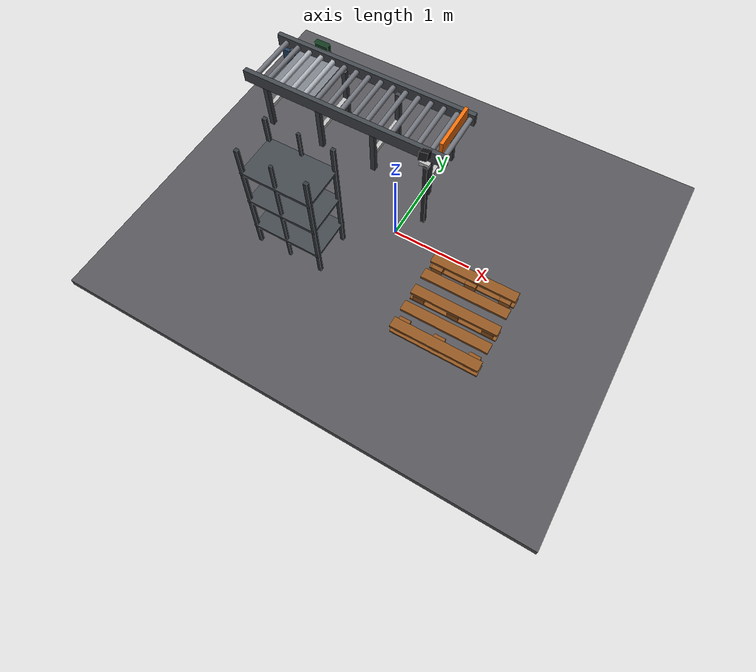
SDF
<sdf version="1.8">
 <world name="ahead_workcell_v3_2_fence">
  <model name="floor">
   <static>true</static>
   <link name="floor_link">
    <collision name="collision">
     <pose>0 0 -0.05 0 0 0</pose>
     <geometry><box><size>6 5 0.10</size></box></geometry>
    </collision>
    <visual name="visual">
     <pose>0 0 -0.05 0 0 0</pose>
     <geometry><box><size>6 5 0.10</size></box></geometry>
     <material><ambient>0.22 0.22 0.23 1</ambient><diffuse>0.32 0.32 0.34 1</diffuse></material>
    </visual>
   </link>
  </model>
  <model name="conveyor_main">
   <static>true</static>
   <link name="conveyor_link">
    <collision name="collision">
     <pose>-1.15 1.05 0.75 0 0 0</pose>
     <geometry><box><size>2.80 0.80 0.20</size></box></geometry>
     <surface><friction><ode><mu>0.7</mu><mu2>150</mu2><fdir1>0 1 0</fdir1></ode></friction></surface>
    </collision>
    <visual name="left_rail">
     <pose>-1.15 0.67 0.84 0 0 0</pose>
     <geometry><box><size>2.90 0.065 0.18</size></box></geometry>
     <material><ambient>0.11 0.12 0.13 1</ambient><diffuse>0.25 0.27 0.29 1</diffuse></material>
    </visual>
    <visual name="right_rail">
     <pose>-1.15 1.43 0.84 0 0 0</pose>
     <geometry><box><size>2.90 0.065 0.18</size></box></geometry>
     <material><ambient>0.11 0.12 0.13 1</ambient><diffuse>0.25 0.27 0.29 1</diffuse></material>
    </visual>
    <visual name="roller_00">
     <pose>-2.450 1.05 0.86 1.57079632679 0 0</pose>
     <geometry><cylinder><radius>0.035</radius><length>0.68</length></cylinder></geometry>
     <material><ambient>0.27 0.28 0.30 1</ambient><diffuse>0.44 0.45 0.48 1</diffuse></material>
    </visual>
    <visual name="roller_01">
     <pose>-2.270 1.05 0.86 1.57079632679 0 0</pose>
     <geometry><cylinder><radius>0.035</radius><length>0.68</length></cylinder></geometry>
     <material><ambient>0.27 0.28 0.30 1</ambient><diffuse>0.44 0.45 0.48 1</diffuse></material>
    </visual>
    <visual name="roller_02">
     <pose>-2.090 1.05 0.86 1.57079632679 0 0</pose>
     <geometry><cylinder><radius>0.035</radius><length>0.68</length></cylinder></geometry>
     <material><ambient>0.43 0.45 0.47 1</ambient><diffuse>0.66 0.68 0.71 1</diffuse></material>
    </visual>
    <visual name="roller_03">
     <pose>-1.910 1.05 0.86 1.57079632679 0 0</pose>
     <geometry><cylinder><radius>0.035</radius><length>0.68</length></cylinder></geometry>
     <material><ambient>0.43 0.45 0.47 1</ambient><diffuse>0.66 0.68 0.71 1</diffuse></material>
    </visual>
    <visual name="roller_04">
     <pose>-1.730 1.05 0.86 1.57079632679 0 0</pose>
     <geometry><cylinder><radius>0.035</radius><length>0.68</length></cylinder></geometry>
     <material><ambient>0.43 0.45 0.47 1</ambient><diffuse>0.66 0.68 0.71 1</diffuse></material>
    </visual>
    <visual name="roller_05">
     <pose>-1.550 1.05 0.86 1.57079632679 0 0</pose>
     <geometry><cylinder><radius>0.035</radius><length>0.68</length></cylinder></geometry>
     <material><ambient>0.27 0.28 0.30 1</ambient><diffuse>0.44 0.45 0.48 1</diffuse></material>
    </visual>
    <visual name="roller_06">
     <pose>-1.370 1.05 0.86 1.57079632679 0 0</pose>
     <geometry><cylinder><radius>0.035</radius><length>0.68</length></cylinder></geometry>
     <material><ambient>0.27 0.28 0.30 1</ambient><diffuse>0.44 0.45 0.48 1</diffuse></material>
    </visual>
    <visual name="roller_07">
     <pose>-1.190 1.05 0.86 1.57079632679 0 0</pose>
     <geometry><cylinder><radius>0.035</radius><length>0.68</length></cylinder></geometry>
     <material><ambient>0.27 0.28 0.30 1</ambient><diffuse>0.44 0.45 0.48 1</diffuse></material>
    </visual>
    <visual name="roller_08">
     <pose>-1.010 1.05 0.86 1.57079632679 0 0</pose>
     <geometry><cylinder><radius>0.035</radius><length>0.68</length></cylinder></geometry>
     <material><ambient>0.27 0.28 0.30 1</ambient><diffuse>0.44 0.45 0.48 1</diffuse></material>
    </visual>
    <visual name="roller_09">
     <pose>-0.830 1.05 0.86 1.57079632679 0 0</pose>
     <geometry><cylinder><radius>0.035</radius><length>0.68</length></cylinder></geometry>
     <material><ambient>0.27 0.28 0.30 1</ambient><diffuse>0.44 0.45 0.48 1</diffuse></material>
    </visual>
    <visual name="roller_10">
     <pose>-0.650 1.05 0.86 1.57079632679 0 0</pose>
     <geometry><cylinder><radius>0.035</radius><length>0.68</length></cylinder></geometry>
     <material><ambient>0.27 0.28 0.30 1</ambient><diffuse>0.44 0.45 0.48 1</diffuse></material>
    </visual>
    <visual name="roller_11">
     <pose>-0.470 1.05 0.86 1.57079632679 0 0</pose>
     <geometry><cylinder><radius>0.035</radius><length>0.68</length></cylinder></geometry>
     <material><ambient>0.27 0.28 0.30 1</ambient><diffuse>0.44 0.45 0.48 1</diffuse></material>
    </visual>
    <visual name="roller_12">
     <pose>-0.290 1.05 0.86 1.57079632679 0 0</pose>
     <geometry><cylinder><radius>0.035</radius><length>0.68</length></cylinder></geometry>
     <material><ambient>0.27 0.28 0.30 1</ambient><diffuse>0.44 0.45 0.48 1</diffuse></material>
    </visual>
    <visual name="roller_13">
     <pose>-0.110 1.05 0.86 1.57079632679 0 0</pose>
     <geometry><cylinder><radius>0.035</radius><length>0.68</length></cylinder></geometry>
     <material><ambient>0.27 0.28 0.30 1</ambient><diffuse>0.44 0.45 0.48 1</diffuse></material>
    </visual>
    <visual name="roller_14">
     <pose>0.070 1.05 0.86 1.57079632679 0 0</pose>
     <geometry><cylinder><radius>0.035</radius><length>0.68</length></cylinder></geometry>
     <material><ambient>0.27 0.28 0.30 1</ambient><diffuse>0.44 0.45 0.48 1</diffuse></material>
    </visual>
    <visual name="roller_15">
     <pose>0.250 1.05 0.86 1.57079632679 0 0</pose>
     <geometry><cylinder><radius>0.035</radius><length>0.68</length></cylinder></geometry>
     <material><ambient>0.27 0.28 0.30 1</ambient><diffuse>0.44 0.45 0.48 1</diffuse></material>
    </visual>
    <visual name="leg_l_0">
     <pose>-2.35 0.73 0.40 0 0 0</pose>
     <geometry><box><size>0.065 0.065 0.80</size></box></geometry>
     <material><ambient>0.12 0.13 0.14 1</ambient><diffuse>0.23 0.24 0.26 1</diffuse></material>
    </visual>
    <visual name="leg_r_0">
     <pose>-2.35 1.37 0.40 0 0 0</pose>
     <geometry><box><size>0.065 0.065 0.80</size></box></geometry>
     <material><ambient>0.12 0.13 0.14 1</ambient><diffuse>0.23 0.24 0.26 1</diffuse></material>
    </visual>
    <visual name="crossbar_0">
     <pose>-2.35 1.05 0.31 0 0 0</pose>
     <geometry><box><size>0.055 0.68 0.055</size></box></geometry>
    </visual>
    <visual name="leg_l_1">
     <pose>-1.55 0.73 0.40 0 0 0</pose>
     <geometry><box><size>0.065 0.065 0.80</size></box></geometry>
     <material><ambient>0.12 0.13 0.14 1</ambient><diffuse>0.23 0.24 0.26 1</diffuse></material>
    </visual>
    <visual name="leg_r_1">
     <pose>-1.55 1.37 0.40 0 0 0</pose>
     <geometry><box><size>0.065 0.065 0.80</size></box></geometry>
     <material><ambient>0.12 0.13 0.14 1</ambient><diffuse>0.23 0.24 0.26 1</diffuse></material>
    </visual>
    <visual name="crossbar_1">
     <pose>-1.55 1.05 0.31 0 0 0</pose>
     <geometry><box><size>0.055 0.68 0.055</size></box></geometry>
    </visual>
    <visual name="leg_l_2">
     <pose>-0.75 0.73 0.40 0 0 0</pose>
     <geometry><box><size>0.065 0.065 0.80</size></box></geometry>
     <material><ambient>0.12 0.13 0.14 1</ambient><diffuse>0.23 0.24 0.26 1</diffuse></material>
    </visual>
    <visual name="leg_r_2">
     <pose>-0.75 1.37 0.40 0 0 0</pose>
     <geometry><box><size>0.065 0.065 0.80</size></box></geometry>
     <material><ambient>0.12 0.13 0.14 1</ambient><diffuse>0.23 0.24 0.26 1</diffuse></material>
    </visual>
    <visual name="crossbar_2">
     <pose>-0.75 1.05 0.31 0 0 0</pose>
     <geometry><box><size>0.055 0.68 0.055</size></box></geometry>
    </visual>
    <visual name="leg_l_3">
     <pose>0.05 0.73 0.40 0 0 0</pose>
     <geometry><box><size>0.065 0.065 0.80</size></box></geometry>
     <material><ambient>0.12 0.13 0.14 1</ambient><diffuse>0.23 0.24 0.26 1</diffuse></material>
    </visual>
    <visual name="leg_r_3">
     <pose>0.05 1.37 0.40 0 0 0</pose>
     <geometry><box><size>0.065 0.065 0.80</size></box></geometry>
     <material><ambient>0.12 0.13 0.14 1</ambient><diffuse>0.23 0.24 0.26 1</diffuse></material>
    </visual>
    <visual name="crossbar_3">
     <pose>0.05 1.05 0.31 0 0 0</pose>
     <geometry><box><size>0.055 0.68 0.055</size></box></geometry>
    </visual>
    <visual name="drive_motor">
     <pose>-2.35 1.47 0.62 0 0 0</pose>
     <geometry><box><size>0.32 0.25 0.28</size></box></geometry>
     <material><ambient>0.06 0.10 0.15 1</ambient><diffuse>0.12 0.23 0.36 1</diffuse></material>
    </visual>
    <visual name="pick_stopper">
     <pose>0.19 1.05 0.96 0 0 0</pose>
     <geometry><box><size>0.045 0.66 0.18</size></box></geometry>
     <material><ambient>0.65 0.25 0.02 1</ambient><diffuse>0.95 0.42 0.03 1</diffuse></material>
    </visual>
   </link>
   <plugin filename="libignition-gazebo-track-controller-system.so" name="gz::sim::systems::TrackController">
    <link>conveyor_link</link>
   </plugin>
  </model>
  <model name="inline_scale">
   <static>true</static>
   <link name="scale_link">
    <visual name="weighing_frame">
     <pose>-1.95 1.05 0.755 0 0 0</pose>
     <geometry><box><size>0.62 0.70 0.085</size></box></geometry>
     <material><ambient>0.24 0.25 0.27 1</ambient><diffuse>0.47 0.49 0.52 1</diffuse></material>
    </visual>
    <visual name="loadcell_base">
     <pose>-1.95 1.05 0.685 0 0 0</pose>
     <geometry><box><size>0.52 0.54 0.045</size></box></geometry>
     <material><ambient>0.08 0.09 0.10 1</ambient><diffuse>0.17 0.18 0.20 1</diffuse></material>
    </visual>
    <visual name="indicator">
     <pose>-1.95 1.49 0.93 0 0 0</pose>
     <geometry><box><size>0.20 0.07 0.14</size></box></geometry>
     <material><ambient>0.03 0.08 0.05 1</ambient><diffuse>0.06 0.22 0.11 1</diffuse></material>
    </visual>
   </link>
  </model>
  <model name="pallet_main">
   <static>true</static>
   <pose>1.15 -0.65 0 0 0 0</pose>
   <link name="pallet_link">
    <collision name="bottom_runner_0_collision">
     <pose>0 -0.48 0.0125 0 0 0</pose>
     <geometry><box><size>1.1 0.14 0.025</size></box></geometry>
    </collision>
    <visual name="bottom_runner_0_visual">
     <pose>0 -0.48 0.0125 0 0 0</pose>
     <geometry><box><size>1.1 0.14 0.025</size></box></geometry>
     <material><ambient>0.34 0.20 0.08 1</ambient><diffuse>0.55 0.32 0.12 1</diffuse></material>
    </visual>
    <collision name="bottom_runner_1_collision">
     <pose>0 0.0 0.0125 0 0 0</pose>
     <geometry><box><size>1.1 0.14 0.025</size></box></geometry>
    </collision>
    <visual name="bottom_runner_1_visual">
     <pose>0 0.0 0.0125 0 0 0</pose>
     <geometry><box><size>1.1 0.14 0.025</size></box></geometry>
     <material><ambient>0.34 0.20 0.08 1</ambient><diffuse>0.55 0.32 0.12 1</diffuse></material>
    </visual>
    <collision name="bottom_runner_2_collision">
     <pose>0 0.48 0.0125 0 0 0</pose>
     <geometry><box><size>1.1 0.14 0.025</size></box></geometry>
    </collision>
    <visual name="bottom_runner_2_visual">
     <pose>0 0.48 0.0125 0 0 0</pose>
     <geometry><box><size>1.1 0.14 0.025</size></box></geometry>
     <material><ambient>0.34 0.20 0.08 1</ambient><diffuse>0.55 0.32 0.12 1</diffuse></material>
    </visual>
    <collision name="support_block_0_0_collision">
     <pose>-0.44 -0.44 0.07 0 0 0</pose>
     <geometry><box><size>0.14 0.15 0.09</size></box></geometry>
    </collision>
    <visual name="support_block_0_0_visual">
     <pose>-0.44 -0.44 0.07 0 0 0</pose>
     <geometry><box><size>0.14 0.15 0.09</size></box></geometry>
     <material><ambient>0.34 0.20 0.08 1</ambient><diffuse>0.55 0.32 0.12 1</diffuse></material>
    </visual>
    <collision name="support_block_0_1_collision">
     <pose>-0.44 0.0 0.07 0 0 0</pose>
     <geometry><box><size>0.14 0.15 0.09</size></box></geometry>
    </collision>
    <visual name="support_block_0_1_visual">
     <pose>-0.44 0.0 0.07 0 0 0</pose>
     <geometry><box><size>0.14 0.15 0.09</size></box></geometry>
     <material><ambient>0.34 0.20 0.08 1</ambient><diffuse>0.55 0.32 0.12 1</diffuse></material>
    </visual>
    <collision name="support_block_0_2_collision">
     <pose>-0.44 0.44 0.07 0 0 0</pose>
     <geometry><box><size>0.14 0.15 0.09</size></box></geometry>
    </collision>
    <visual name="support_block_0_2_visual">
     <pose>-0.44 0.44 0.07 0 0 0</pose>
     <geometry><box><size>0.14 0.15 0.09</size></box></geometry>
     <material><ambient>0.34 0.20 0.08 1</ambient><diffuse>0.55 0.32 0.12 1</diffuse></material>
    </visual>
    <collision name="support_block_1_0_collision">
     <pose>0.0 -0.44 0.07 0 0 0</pose>
     <geometry><box><size>0.14 0.15 0.09</size></box></geometry>
    </collision>
    <visual name="support_block_1_0_visual">
     <pose>0.0 -0.44 0.07 0 0 0</pose>
     <geometry><box><size>0.14 0.15 0.09</size></box></geometry>
     <material><ambient>0.34 0.20 0.08 1</ambient><diffuse>0.55 0.32 0.12 1</diffuse></material>
    </visual>
    <collision name="support_block_1_1_collision">
     <pose>0.0 0.0 0.07 0 0 0</pose>
     <geometry><box><size>0.14 0.15 0.09</size></box></geometry>
    </collision>
    <visual name="support_block_1_1_visual">
     <pose>0.0 0.0 0.07 0 0 0</pose>
     <geometry><box><size>0.14 0.15 0.09</size></box></geometry>
     <material><ambient>0.34 0.20 0.08 1</ambient><diffuse>0.55 0.32 0.12 1</diffuse></material>
    </visual>
    <collision name="support_block_1_2_collision">
     <pose>0.0 0.44 0.07 0 0 0</pose>
     <geometry><box><size>0.14 0.15 0.09</size></box></geometry>
    </collision>
    <visual name="support_block_1_2_visual">
     <pose>0.0 0.44 0.07 0 0 0</pose>
     <geometry><box><size>0.14 0.15 0.09</size></box></geometry>
     <material><ambient>0.34 0.20 0.08 1</ambient><diffuse>0.55 0.32 0.12 1</diffuse></material>
    </visual>
    <collision name="support_block_2_0_collision">
     <pose>0.44 -0.44 0.07 0 0 0</pose>
     <geometry><box><size>0.14 0.15 0.09</size></box></geometry>
    </collision>
    <visual name="support_block_2_0_visual">
     <pose>0.44 -0.44 0.07 0 0 0</pose>
     <geometry><box><size>0.14 0.15 0.09</size></box></geometry>
     <material><ambient>0.34 0.20 0.08 1</ambient><diffuse>0.55 0.32 0.12 1</diffuse></material>
    </visual>
    <collision name="support_block_2_1_collision">
     <pose>0.44 0.0 0.07 0 0 0</pose>
     <geometry><box><size>0.14 0.15 0.09</size></box></geometry>
    </collision>
    <visual name="support_block_2_1_visual">
     <pose>0.44 0.0 0.07 0 0 0</pose>
     <geometry><box><size>0.14 0.15 0.09</size></box></geometry>
     <material><ambient>0.34 0.20 0.08 1</ambient><diffuse>0.55 0.32 0.12 1</diffuse></material>
    </visual>
    <collision name="support_block_2_2_collision">
     <pose>0.44 0.44 0.07 0 0 0</pose>
     <geometry><box><size>0.14 0.15 0.09</size></box></geometry>
    </collision>
    <visual name="support_block_2_2_visual">
     <pose>0.44 0.44 0.07 0 0 0</pose>
     <geometry><box><size>0.14 0.15 0.09</size></box></geometry>
     <material><ambient>0.34 0.20 0.08 1</ambient><diffuse>0.55 0.32 0.12 1</diffuse></material>
    </visual>
    <collision name="top_board_0_collision">
     <pose>0 -0.484 0.1325 0 0 0</pose>
     <geometry><box><size>1.1 0.13 0.035</size></box></geometry>
    </collision>
    <visual name="top_board_0_visual">
     <pose>0 -0.484 0.1325 0 0 0</pose>
     <geometry><box><size>1.1 0.13 0.035</size></box></geometry>
     <material><ambient>0.34 0.20 0.08 1</ambient><diffuse>0.55 0.32 0.12 1</diffuse></material>
    </visual>
    <collision name="top_board_1_collision">
     <pose>0 -0.242 0.1325 0 0 0</pose>
     <geometry><box><size>1.1 0.13 0.035</size></box></geometry>
    </collision>
    <visual name="top_board_1_visual">
     <pose>0 -0.242 0.1325 0 0 0</pose>
     <geometry><box><size>1.1 0.13 0.035</size></box></geometry>
     <material><ambient>0.34 0.20 0.08 1</ambient><diffuse>0.55 0.32 0.12 1</diffuse></material>
    </visual>
    <collision name="top_board_2_collision">
     <pose>0 0.0 0.1325 0 0 0</pose>
     <geometry><box><size>1.1 0.13 0.035</size></box></geometry>
    </collision>
    <visual name="top_board_2_visual">
     <pose>0 0.0 0.1325 0 0 0</pose>
     <geometry><box><size>1.1 0.13 0.035</size></box></geometry>
     <material><ambient>0.34 0.20 0.08 1</ambient><diffuse>0.55 0.32 0.12 1</diffuse></material>
    </visual>
    <collision name="top_board_3_collision">
     <pose>0 0.242 0.1325 0 0 0</pose>
     <geometry><box><size>1.1 0.13 0.035</size></box></geometry>
    </collision>
    <visual name="top_board_3_visual">
     <pose>0 0.242 0.1325 0 0 0</pose>
     <geometry><box><size>1.1 0.13 0.035</size></box></geometry>
     <material><ambient>0.34 0.20 0.08 1</ambient><diffuse>0.55 0.32 0.12 1</diffuse></material>
    </visual>
    <collision name="top_board_4_collision">
     <pose>0 0.484 0.1325 0 0 0</pose>
     <geometry><box><size>1.1 0.13 0.035</size></box></geometry>
    </collision>
    <visual name="top_board_4_visual">
     <pose>0 0.484 0.1325 0 0 0</pose>
     <geometry><box><size>1.1 0.13 0.035</size></box></geometry>
     <material><ambient>0.34 0.20 0.08 1</ambient><diffuse>0.55 0.32 0.12 1</diffuse></material>
    </visual>
   </link>
  </model>
  <model name="buffer_rack">
   <static>true</static>
   <pose>-0.95 -0.65 0 0 0 0</pose>
   <link name="rack_link">
    <collision name="post_fl_collision">
     <pose>-0.43 -0.25 0.85 0 0 0</pose>
     <geometry><box><size>0.045 0.045 1.70</size></box></geometry>
    </collision>
    <visual name="post_fl_visual">
     <pose>-0.43 -0.25 0.85 0 0 0</pose>
     <geometry><box><size>0.045 0.045 1.70</size></box></geometry>
     <material><ambient>0.18 0.20 0.22 1</ambient><diffuse>0.18 0.20 0.22 1</diffuse></material>
    </visual>
    <collision name="post_fr_collision">
     <pose>0.43 -0.25 0.85 0 0 0</pose>
     <geometry><box><size>0.045 0.045 1.70</size></box></geometry>
    </collision>
    <visual name="post_fr_visual">
     <pose>0.43 -0.25 0.85 0 0 0</pose>
     <geometry><box><size>0.045 0.045 1.70</size></box></geometry>
     <material><ambient>0.18 0.20 0.22 1</ambient><diffuse>0.18 0.20 0.22 1</diffuse></material>
    </visual>
    <collision name="post_bl_collision">
     <pose>-0.43 0.25 0.85 0 0 0</pose>
     <geometry><box><size>0.045 0.045 1.70</size></box></geometry>
    </collision>
    <visual name="post_bl_visual">
     <pose>-0.43 0.25 0.85 0 0 0</pose>
     <geometry><box><size>0.045 0.045 1.70</size></box></geometry>
     <material><ambient>0.18 0.20 0.22 1</ambient><diffuse>0.18 0.20 0.22 1</diffuse></material>
    </visual>
    <collision name="post_br_collision">
     <pose>0.43 0.25 0.85 0 0 0</pose>
     <geometry><box><size>0.045 0.045 1.70</size></box></geometry>
    </collision>
    <visual name="post_br_visual">
     <pose>0.43 0.25 0.85 0 0 0</pose>
     <geometry><box><size>0.045 0.045 1.70</size></box></geometry>
     <material><ambient>0.18 0.20 0.22 1</ambient><diffuse>0.18 0.20 0.22 1</diffuse></material>
    </visual>
    <collision name="center_front_collision">
     <pose>0 -0.25 0.85 0 0 0</pose>
     <geometry><box><size>0.035 0.035 1.70</size></box></geometry>
    </collision>
    <visual name="center_front_visual">
     <pose>0 -0.25 0.85 0 0 0</pose>
     <geometry><box><size>0.035 0.035 1.70</size></box></geometry>
     <material><ambient>0.18 0.20 0.22 1</ambient><diffuse>0.18 0.20 0.22 1</diffuse></material>
    </visual>
    <collision name="center_back_collision">
     <pose>0 0.25 0.85 0 0 0</pose>
     <geometry><box><size>0.035 0.035 1.70</size></box></geometry>
    </collision>
    <visual name="center_back_visual">
     <pose>0 0.25 0.85 0 0 0</pose>
     <geometry><box><size>0.035 0.035 1.70</size></box></geometry>
     <material><ambient>0.18 0.20 0.22 1</ambient><diffuse>0.18 0.20 0.22 1</diffuse></material>
    </visual>
    <collision name="shelf_0_collision">
     <pose>0 0 0.33 0 0 0</pose>
     <geometry><box><size>0.90 0.56 0.035</size></box></geometry>
    </collision>
    <visual name="shelf_0_visual">
     <pose>0 0 0.33 0 0 0</pose>
     <geometry><box><size>0.90 0.56 0.035</size></box></geometry>
     <material><ambient>0.25 0.27 0.29 1</ambient><diffuse>0.25 0.27 0.29 1</diffuse></material>
    </visual>
    <collision name="shelf_1_collision">
     <pose>0 0 0.83 0 0 0</pose>
     <geometry><box><size>0.90 0.56 0.035</size></box></geometry>
    </collision>
    <visual name="shelf_1_visual">
     <pose>0 0 0.83 0 0 0</pose>
     <geometry><box><size>0.90 0.56 0.035</size></box></geometry>
     <material><ambient>0.25 0.27 0.29 1</ambient><diffuse>0.25 0.27 0.29 1</diffuse></material>
    </visual>
    <collision name="shelf_2_collision">
     <pose>0 0 1.33 0 0 0</pose>
     <geometry><box><size>0.90 0.56 0.035</size></box></geometry>
    </collision>
    <visual name="shelf_2_visual">
     <pose>0 0 1.33 0 0 0</pose>
     <geometry><box><size>0.90 0.56 0.035</size></box></geometry>
     <material><ambient>0.25 0.27 0.29 1</ambient><diffuse>0.25 0.27 0.29 1</diffuse></material>
    </visual>
   </link>
  </model>
  <model name="camera_1_cctv_base">
   <static>true</static>
   <link name="camera_1_link">
    <visual name="mount_post">
     <pose>0.32 0.08 0.91 0 0 0</pose>
     <geometry><box><size>0.055 0.055 1.02</size></box></geometry>
     <material><ambient>0.08 0.08 0.09 1</ambient><diffuse>0.16 0.16 0.18 1</diffuse></material>
    </visual>
    <visual name="mount_arm">
     <pose>0.30 0.10 1.43 0 0 0</pose>
     <geometry><box><size>0.12 0.055 0.055</size></box></geometry>
    </visual>
    <visual name="camera_housing">
     <pose>0.28 0.12 1.55
                0 0.629544 1.761981</pose>
     <geometry><box><size>0.19 0.10 0.09</size></box></geometry>
     <material><ambient>0.035 0.035 0.04 1</ambient><diffuse>0.08 0.08 0.09 1</diffuse></material>
    </visual>
    <sensor name="cctv_camera_1" type="camera">
     <pose>0.28 0.12 1.55
                0 0.629544 1.761981</pose>
     <always_on>true</always_on>
     <update_rate>15</update_rate>
     <topic>/pac/top_camera/image</topic>
     <camera>
      <horizontal_fov>1.40</horizontal_fov>
      <image><width>1280</width><height>720</height><format>R8G8B8</format></image>
      <clip><near>0.08</near><far>6.0</far></clip>
     </camera>
    </sensor>
   </link>
  </model>
 </world>
</sdf>
